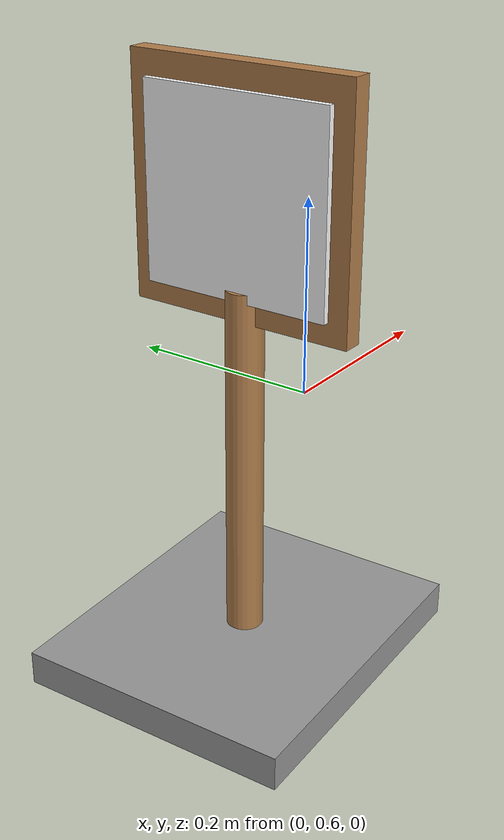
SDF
<?xml version='1.0'?>
<sdf version='1.6'>
  <model name='aruco_wood_thin_base'>
    <link name='link_0'>
      <inertial>
        <mass>1</mass>
        <inertia>
          <ixx>0.0134333</ixx>
          <ixy>0</ixy>
          <ixz>0</ixz>
          <iyy>0.0134333</iyy>
          <iyz>0</iyz>
          <izz>0.0002</izz>
        </inertia>
        <pose frame=''>0 0 0 0 -0 0</pose>
      </inertial>
      <pose frame=''>-0.017932 0.660168 -0.097628 0 -0 0</pose>
      <gravity>1</gravity>
      <self_collide>0</self_collide>
      <kinematic>0</kinematic>
      <enable_wind>0</enable_wind>
      <visual name='visual'>
        <pose frame=''>0 0 0 0 -0 0</pose>
        <geometry>
          <cylinder>
            <radius>0.02</radius>
            <length>0.4</length>
          </cylinder>
        </geometry>
        <material>
          <lighting>1</lighting>
          <script>
            <uri>file://media/materials/scripts/gazebo.material</uri>
            <name>Gazebo/Wood</name>
          </script>
          <shader type='vertex'>
            <normal_map>__default__</normal_map>
          </shader>
          <ambient>0.3 0.3 0.3 1</ambient>
          <diffuse>0.7 0.7 0.7 1</diffuse>
          <specular>0.01 0.01 0.01 1</specular>
          <emissive>0 0 0 1</emissive>
        </material>
        <transparency>0</transparency>
        <cast_shadows>1</cast_shadows>
      </visual>
      <collision name='collision'>
        <laser_retro>0</laser_retro>
        <max_contacts>10</max_contacts>
        <pose frame=''>0 0 0 0 -0 0</pose>
        <geometry>
          <cylinder>
            <radius>0.02</radius>
            <length>0.4</length>
          </cylinder>
        </geometry>
        <surface>
          <friction>
            <ode>
              <mu>1</mu>
              <mu2>1</mu2>
              <fdir1>0 0 0</fdir1>
              <slip1>0</slip1>
              <slip2>0</slip2>
            </ode>
            <torsional>
              <coefficient>1</coefficient>
              <patch_radius>0</patch_radius>
              <surface_radius>0</surface_radius>
              <use_patch_radius>1</use_patch_radius>
              <ode>
                <slip>0</slip>
              </ode>
            </torsional>
          </friction>
          <bounce>
            <restitution_coefficient>0</restitution_coefficient>
            <threshold>1e+06</threshold>
          </bounce>
          <contact>
            <collide_without_contact>0</collide_without_contact>
            <collide_without_contact_bitmask>1</collide_without_contact_bitmask>
            <collide_bitmask>1</collide_bitmask>
            <ode>
              <soft_cfm>0</soft_cfm>
              <soft_erp>0.2</soft_erp>
              <kp>1e+13</kp>
              <kd>1</kd>
              <max_vel>0.01</max_vel>
              <min_depth>0</min_depth>
            </ode>
            <bullet>
              <split_impulse>1</split_impulse>
              <split_impulse_penetration_threshold>-0.01</split_impulse_penetration_threshold>
              <soft_cfm>0</soft_cfm>
              <soft_erp>0.2</soft_erp>
              <kp>1e+13</kp>
              <kd>1</kd>
            </bullet>
          </contact>
        </surface>
      </collision>
    </link>
    <link name='link_0_0'>
      <inertial>
        <mass>0.00411596</mass>
        <inertia>
          <ixx>3.246e-05</ixx>
          <ixy>0</ixy>
          <ixz>0</ixz>
          <iyy>4.442e-05</iyy>
          <iyz>0</iyz>
          <izz>7.59e-05</izz>
        </inertia>
        <pose frame=''>0 0 0 0 -0 0</pose>
      </inertial>
      <pose frame=''>-0.015207 0.663184 -0.304733 0 -0 0.045</pose>
      <self_collide>0</self_collide>
      <enable_wind>0</enable_wind>
      <kinematic>0</kinematic>
      <gravity>1</gravity>
      <visual name='visual'>
        <pose frame=''>0 0 0 0 -0 0</pose>
        <geometry>
          <box>
            <size>0.357871 0.305285 0.037723</size>
          </box>
        </geometry>
        <material>
          <lighting>1</lighting>
          <script>
            <uri>file://media/materials/scripts/gazebo.material</uri>
            <name>Gazebo/Grey</name>
          </script>
          <shader type='vertex'>
            <normal_map>__default__</normal_map>
          </shader>
          <emissive>0 0 0 1</emissive>
        </material>
        <transparency>0</transparency>
        <cast_shadows>1</cast_shadows>
      </visual>
      <collision name='collision'>
        <laser_retro>0</laser_retro>
        <max_contacts>10</max_contacts>
        <pose frame=''>0 0 0 0 -0 0</pose>
        <geometry>
          <box>
            <size>0.357871 0.305285 0.037723</size>
          </box>
        </geometry>
        <surface>
          <friction>
            <ode>
              <mu>1</mu>
              <mu2>1</mu2>
              <fdir1>0 0 0</fdir1>
              <slip1>0</slip1>
              <slip2>0</slip2>
            </ode>
            <torsional>
              <coefficient>1</coefficient>
              <patch_radius>0</patch_radius>
              <surface_radius>0</surface_radius>
              <use_patch_radius>1</use_patch_radius>
              <ode>
                <slip>0</slip>
              </ode>
            </torsional>
          </friction>
          <bounce>
            <restitution_coefficient>0</restitution_coefficient>
            <threshold>1e+06</threshold>
          </bounce>
          <contact>
            <collide_without_contact>0</collide_without_contact>
            <collide_without_contact_bitmask>1</collide_without_contact_bitmask>
            <collide_bitmask>1</collide_bitmask>
            <ode>
              <soft_cfm>0</soft_cfm>
              <soft_erp>0.2</soft_erp>
              <kp>1e+13</kp>
              <kd>1</kd>
              <max_vel>0.01</max_vel>
              <min_depth>0</min_depth>
            </ode>
            <bullet>
              <split_impulse>1</split_impulse>
              <split_impulse_penetration_threshold>-0.01</split_impulse_penetration_threshold>
              <soft_cfm>0</soft_cfm>
              <soft_erp>0.2</soft_erp>
              <kp>1e+13</kp>
              <kd>1</kd>
            </bullet>
          </contact>
        </surface>
      </collision>
    </link>
    <link name='link_1'>
      <inertial>
        <mass>1.21407</mass>
        <inertia>
          <ixx>0.00864359</ixx>
          <ixy>0</ixy>
          <ixz>0</ixz>
          <iyy>0.00421539</iyy>
          <iyz>0</iyz>
          <izz>0.00446773</izz>
        </inertia>
        <pose frame=''>0 0 0 0 -0 0</pose>
      </inertial>
      <pose frame=''>-0.025899 0.66382 0.194379 0 -0 0</pose>
      <gravity>1</gravity>
      <self_collide>0</self_collide>
      <kinematic>0</kinematic>
      <enable_wind>0</enable_wind>
      <visual name='visual'>
        <pose frame=''>0 0 0 0 -0 0</pose>
        <geometry>
          <box>
            <size>0.013978 0.209676 0.203642</size>
          </box>
        </geometry>
        <material>
          <script>
            <uri>file://scripts</uri>
            <uri>file://textures</uri>
            <name>aruco/standard_opp</name>
          </script>
          <emissive>0 0 0 1</emissive>
          <shader type='vertex'>
            <normal_map>__default__</normal_map>
          </shader>
          <ambient>1 1 1 1</ambient>
          <diffuse>1 1 1 1</diffuse>
          <specular>0 0 0 1</specular>
        </material>
        <transparency>0</transparency>
        <cast_shadows>1</cast_shadows>
      </visual>
      <collision name='collision'>
        <laser_retro>0</laser_retro>
        <max_contacts>10</max_contacts>
        <pose frame=''>0 0 0 0 -0 0</pose>
        <geometry>
          <box>
            <size>0.013978 0.209676 0.203642</size>
          </box>
        </geometry>
        <surface>
          <friction>
            <ode>
              <mu>1</mu>
              <mu2>1</mu2>
              <fdir1>0 0 0</fdir1>
              <slip1>0</slip1>
              <slip2>0</slip2>
            </ode>
            <torsional>
              <coefficient>1</coefficient>
              <patch_radius>0</patch_radius>
              <surface_radius>0</surface_radius>
              <use_patch_radius>1</use_patch_radius>
              <ode>
                <slip>0</slip>
              </ode>
            </torsional>
          </friction>
          <bounce>
            <restitution_coefficient>0</restitution_coefficient>
            <threshold>1e+06</threshold>
          </bounce>
          <contact>
            <collide_without_contact>0</collide_without_contact>
            <collide_without_contact_bitmask>1</collide_without_contact_bitmask>
            <collide_bitmask>1</collide_bitmask>
            <ode>
              <soft_cfm>0</soft_cfm>
              <soft_erp>0.2</soft_erp>
              <kp>1e+13</kp>
              <kd>1</kd>
              <max_vel>0.01</max_vel>
              <min_depth>0</min_depth>
            </ode>
            <bullet>
              <split_impulse>1</split_impulse>
              <split_impulse_penetration_threshold>-0.01</split_impulse_penetration_threshold>
              <soft_cfm>0</soft_cfm>
              <soft_erp>0.2</soft_erp>
              <kp>1e+13</kp>
              <kd>1</kd>
            </bullet>
          </contact>
        </surface>
      </collision>
    </link>
    <link name='link_1_clone'>
      <inertial>
        <mass>0.519809</mass>
        <inertia>
          <ixx>0.00549167</ixx>
          <ixy>0</ixy>
          <ixz>0</ixz>
          <iyy>0.00278045</iyy>
          <iyz>0</iyz>
          <izz>0.00275135</izz>
        </inertia>
        <pose frame=''>0 0 0 0 -0 0</pose>
      </inertial>
      <pose frame=''>-0.015207 0.663184 0.195267 0 -0 0</pose>
      <gravity>1</gravity>
      <self_collide>0</self_collide>
      <kinematic>0</kinematic>
      <enable_wind>0</enable_wind>
      <visual name='visual'>
        <pose frame=''>0 0 0 0 -0 0</pose>
        <geometry>
          <box>
            <size>0.021523 0.251103 0.252437</size>
          </box>
        </geometry>
        <material>
          <script>
            <uri>file://scripts</uri>
            <uri>file://textures</uri>
            <name>Gazebo/Wood</name>
          </script>
          <shader type='vertex'>
            <normal_map>__default__</normal_map>
          </shader>
          <ambient>1 1 1 1</ambient>
          <diffuse>1 1 1 1</diffuse>
          <specular>0 0 0 1</specular>
          <emissive>0 0 0 1</emissive>
        </material>
        <transparency>0</transparency>
        <cast_shadows>1</cast_shadows>
      </visual>
      <collision name='collision'>
        <laser_retro>0</laser_retro>
        <max_contacts>10</max_contacts>
        <pose frame=''>0 0 0 0 -0 0</pose>
        <geometry>
          <box>
            <size>0.021523 0.251103 0.252437</size>
          </box>
        </geometry>
        <surface>
          <friction>
            <ode>
              <mu>1</mu>
              <mu2>1</mu2>
              <fdir1>0 0 0</fdir1>
              <slip1>0</slip1>
              <slip2>0</slip2>
            </ode>
            <torsional>
              <coefficient>1</coefficient>
              <patch_radius>0</patch_radius>
              <surface_radius>0</surface_radius>
              <use_patch_radius>1</use_patch_radius>
              <ode>
                <slip>0</slip>
              </ode>
            </torsional>
          </friction>
          <bounce>
            <restitution_coefficient>0</restitution_coefficient>
            <threshold>1e+06</threshold>
          </bounce>
          <contact>
            <collide_without_contact>0</collide_without_contact>
            <collide_without_contact_bitmask>1</collide_without_contact_bitmask>
            <collide_bitmask>1</collide_bitmask>
            <ode>
              <soft_cfm>0</soft_cfm>
              <soft_erp>0.2</soft_erp>
              <kp>1e+13</kp>
              <kd>1</kd>
              <max_vel>0.01</max_vel>
              <min_depth>0</min_depth>
            </ode>
            <bullet>
              <split_impulse>1</split_impulse>
              <split_impulse_penetration_threshold>-0.01</split_impulse_penetration_threshold>
              <soft_cfm>0</soft_cfm>
              <soft_erp>0.2</soft_erp>
              <kp>1e+13</kp>
              <kd>1</kd>
            </bullet>
          </contact>
        </surface>
      </collision>
    </link>
    <link name='link_1_clone_0'>
      <inertial>
        <mass>0.238009</mass>
        <inertia>
          <ixx>0.00161175</ixx>
          <ixy>0</ixy>
          <ixz>0</ixz>
          <iyy>0.000787067</iyy>
          <iyz>0</iyz>
          <izz>0.000832042</izz>
        </inertia>
        <pose frame=''>0 0 0 0 -0 0</pose>
      </inertial>
      <pose frame=''>-0.00403 0.665261 0.195247 0 -0 0</pose>
      <gravity>1</gravity>
      <self_collide>0</self_collide>
      <kinematic>0</kinematic>
      <enable_wind>0</enable_wind>
      <visual name='visual'>
        <pose frame=''>0 0 0 0 -0 0</pose>
        <geometry>
          <box>
            <size>0.013624 0.204363 0.198738</size>
          </box>
        </geometry>
        <material>
          <script>
            <uri>file://scripts</uri>
            <uri>file://textures</uri>
            <name>aruco/standard_opp</name>
          </script>
          <emissive>0 0 0 1</emissive>
          <shader type='vertex'>
            <normal_map>__default__</normal_map>
          </shader>
          <ambient>1 1 1 1</ambient>
          <diffuse>1 1 1 1</diffuse>
          <specular>0 0 0 1</specular>
        </material>
        <transparency>0</transparency>
        <cast_shadows>1</cast_shadows>
      </visual>
      <collision name='collision'>
        <laser_retro>0</laser_retro>
        <max_contacts>10</max_contacts>
        <pose frame=''>0 0 0 0 -0 0</pose>
        <geometry>
          <box>
            <size>0.013624 0.204363 0.198738</size>
          </box>
        </geometry>
        <surface>
          <friction>
            <ode>
              <mu>1</mu>
              <mu2>1</mu2>
              <fdir1>0 0 0</fdir1>
              <slip1>0</slip1>
              <slip2>0</slip2>
            </ode>
            <torsional>
              <coefficient>1</coefficient>
              <patch_radius>0</patch_radius>
              <surface_radius>0</surface_radius>
              <use_patch_radius>1</use_patch_radius>
              <ode>
                <slip>0</slip>
              </ode>
            </torsional>
          </friction>
          <bounce>
            <restitution_coefficient>0</restitution_coefficient>
            <threshold>1e+06</threshold>
          </bounce>
          <contact>
            <collide_without_contact>0</collide_without_contact>
            <collide_without_contact_bitmask>1</collide_without_contact_bitmask>
            <collide_bitmask>1</collide_bitmask>
            <ode>
              <soft_cfm>0</soft_cfm>
              <soft_erp>0.2</soft_erp>
              <kp>1e+13</kp>
              <kd>1</kd>
              <max_vel>0.01</max_vel>
              <min_depth>0</min_depth>
            </ode>
            <bullet>
              <split_impulse>1</split_impulse>
              <split_impulse_penetration_threshold>-0.01</split_impulse_penetration_threshold>
              <soft_cfm>0</soft_cfm>
              <soft_erp>0.2</soft_erp>
              <kp>1e+13</kp>
              <kd>1</kd>
            </bullet>
          </contact>
        </surface>
      </collision>
    </link>
    <joint name='link_0_JOINT_0' type='fixed'>
      <parent>link_0</parent>
      <child>link_1</child>
      <pose frame=''>0 0 0 0 -0 0</pose>
      <physics>
        <ode>
          <limit>
            <cfm>0</cfm>
            <erp>0.2</erp>
          </limit>
          <suspension>
            <cfm>0</cfm>
            <erp>0.2</erp>
          </suspension>
        </ode>
      </physics>
    </joint>
    <joint name='link_1_JOINT_0_0' type='fixed'>
      <parent>link_1</parent>
      <child>link_1_clone_0</child>
      <pose frame=''>0 0 0 0 -0 0</pose>
      <physics>
        <ode>
          <limit>
            <cfm>0</cfm>
            <erp>0.2</erp>
          </limit>
          <suspension>
            <cfm>0</cfm>
            <erp>0.2</erp>
          </suspension>
        </ode>
      </physics>
    </joint>
    <joint name='link_1_JOINT_0' type='fixed'>
      <parent>link_1</parent>
      <child>link_1_clone</child>
      <pose frame=''>0 0 0 0 -0 0</pose>
      <physics>
        <ode>
          <limit>
            <cfm>0</cfm>
            <erp>0.2</erp>
          </limit>
          <suspension>
            <cfm>0</cfm>
            <erp>0.2</erp>
          </suspension>
        </ode>
      </physics>
    </joint>
    <joint name='link_1_clone_JOINT_0' type='fixed'>
      <parent>link_1_clone</parent>
      <child>link_0_0</child>
      <pose frame=''>0 0 0 0 -0 0</pose>
      <physics>
        <ode>
          <limit>
            <cfm>0</cfm>
            <erp>0.2</erp>
          </limit>
          <suspension>
            <cfm>0</cfm>
            <erp>0.2</erp>
          </suspension>
        </ode>
      </physics>
    </joint>
    <static>0</static>
    <allow_auto_disable>1</allow_auto_disable>
  </model>
</sdf>
